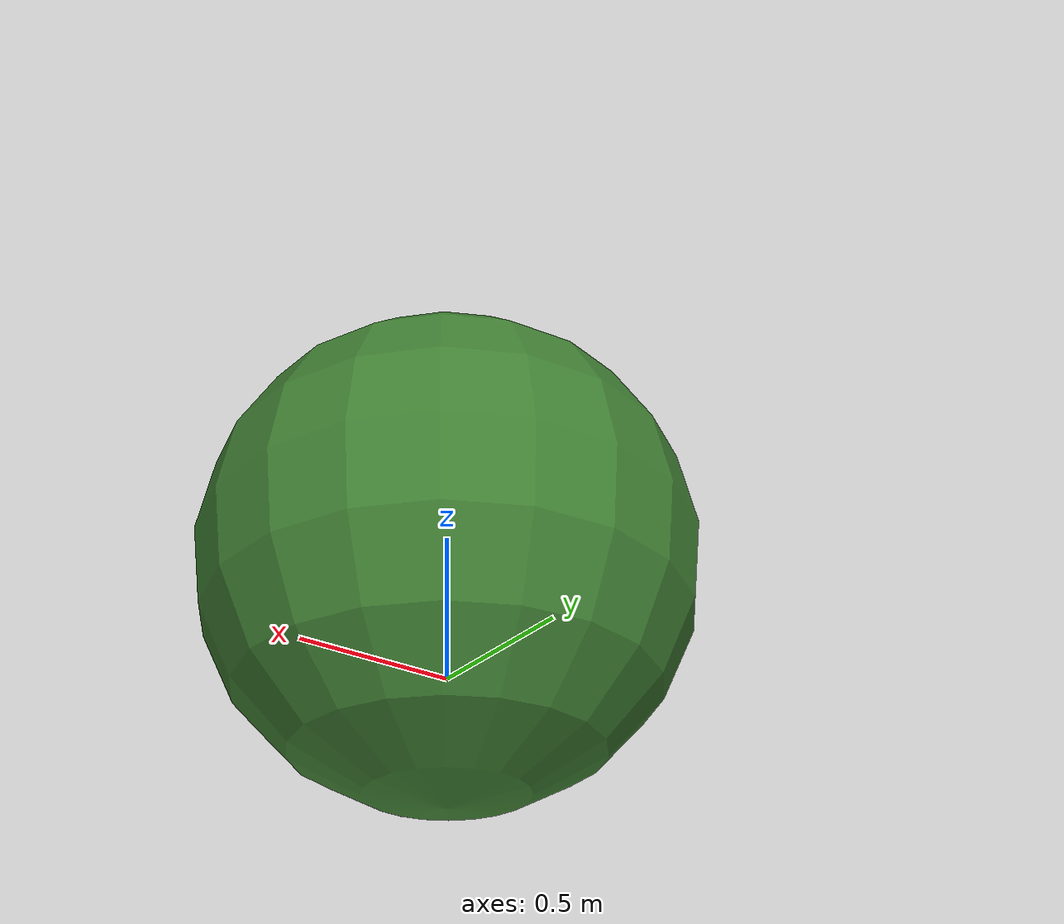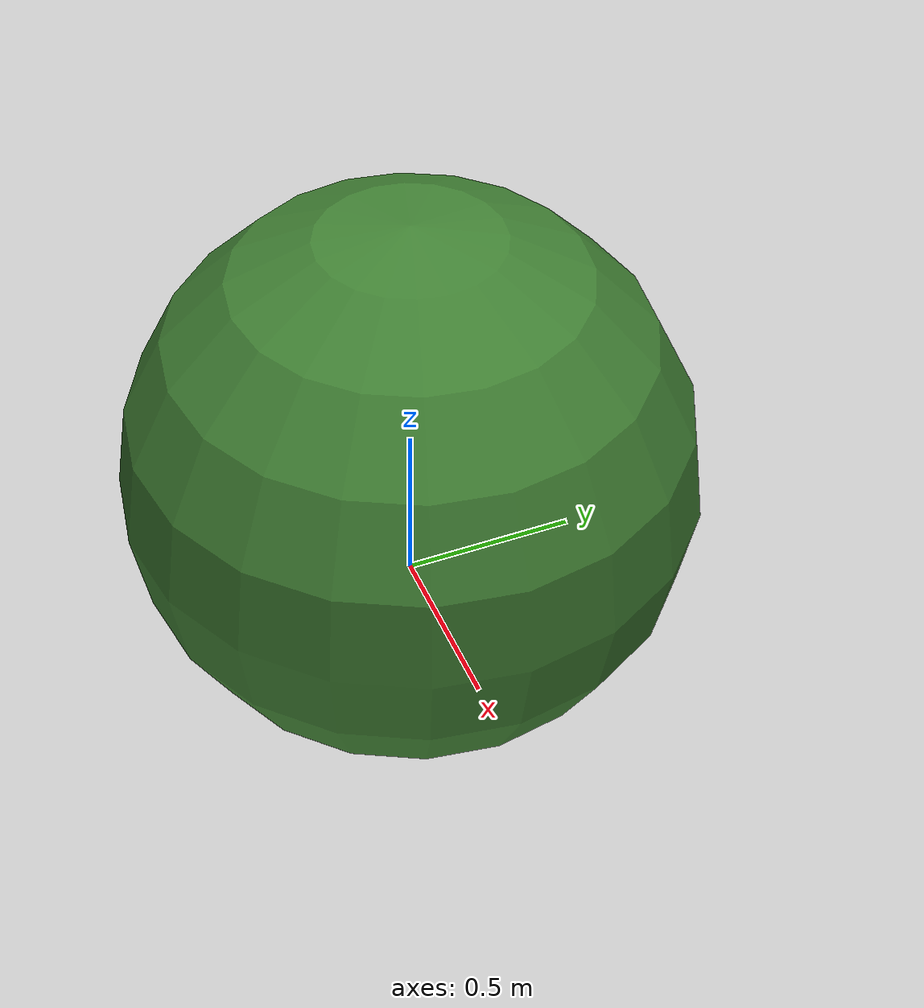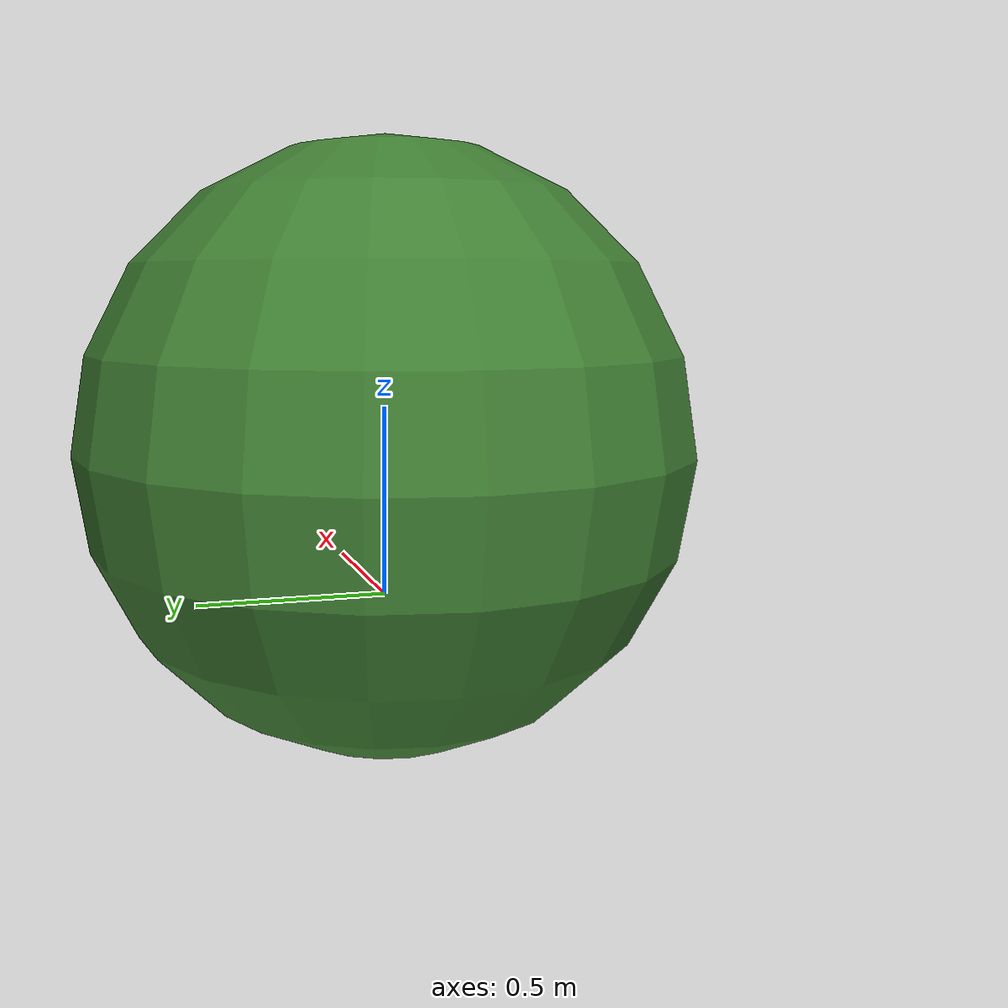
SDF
<?xml version="1.0"?>
<sdf version="1.9">
  <model name="bush">
    <static>true</static>
    <link name="main">
      <collision name="col">
        <geometry><box><size>1 1 0.6</size></box></geometry>
      </collision>
      <visual name="bush_vis">
        <pose>0 0 0.4 0 0 0</pose>
        <geometry><sphere><radius>0.8</radius></sphere></geometry>
        <material>
          <ambient>0.2 0.45 0.15 1</ambient>
          <diffuse>0.25 0.5 0.2 1</diffuse>
          <specular>0.1 0.2 0.05 1</specular>
        </material>
      </visual>
    </link>
  </model>
</sdf>
